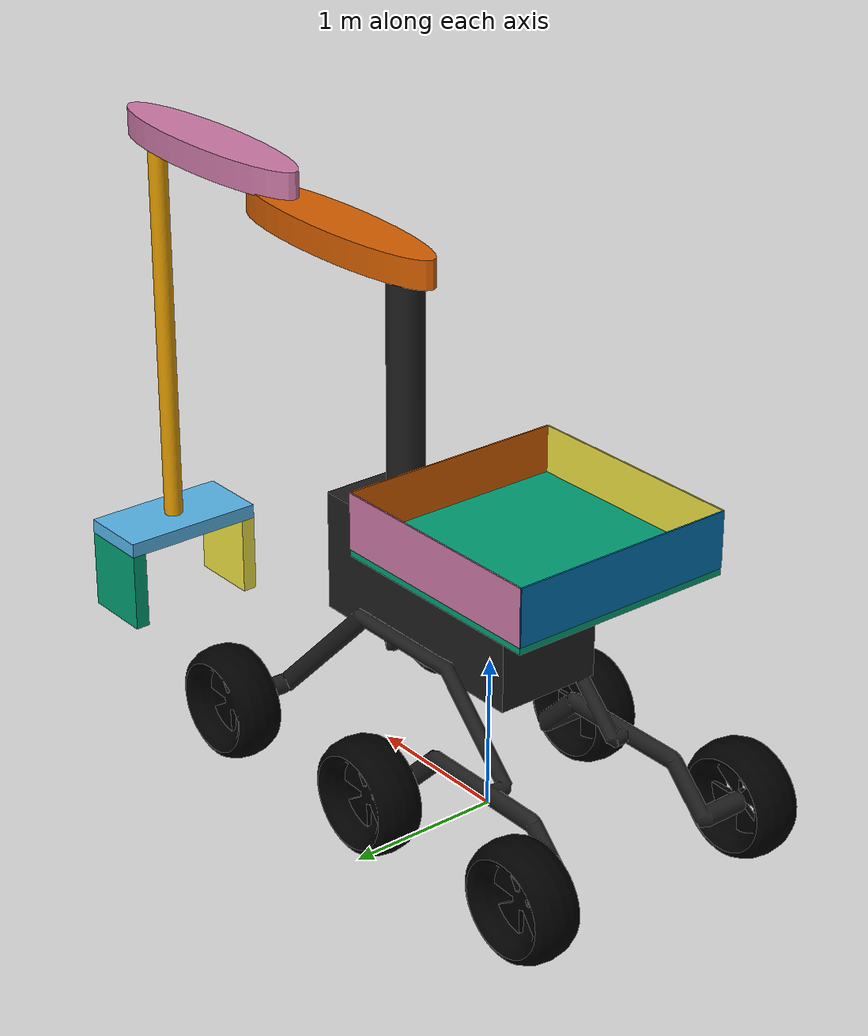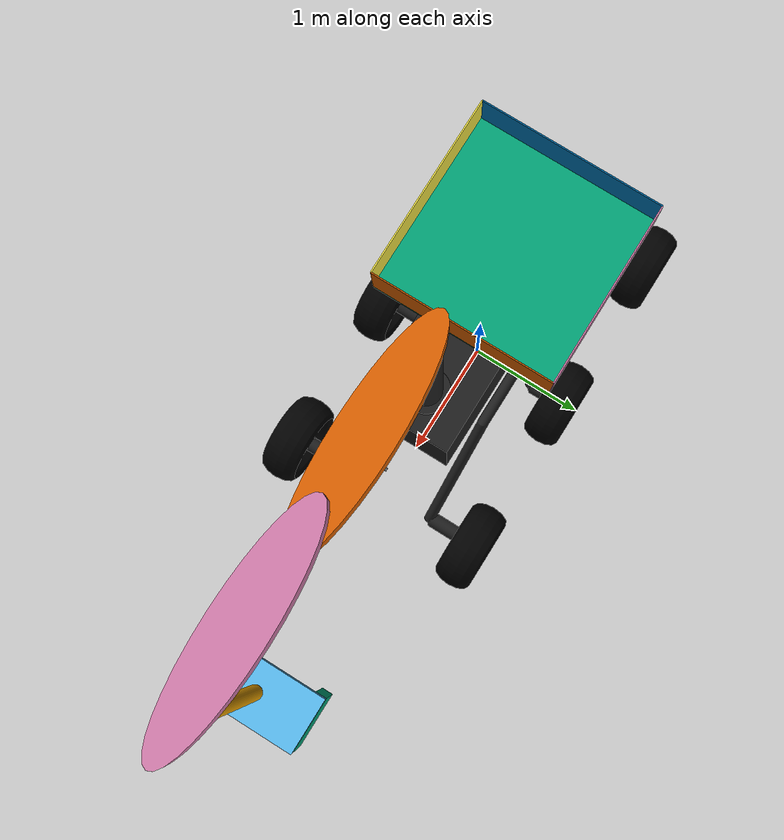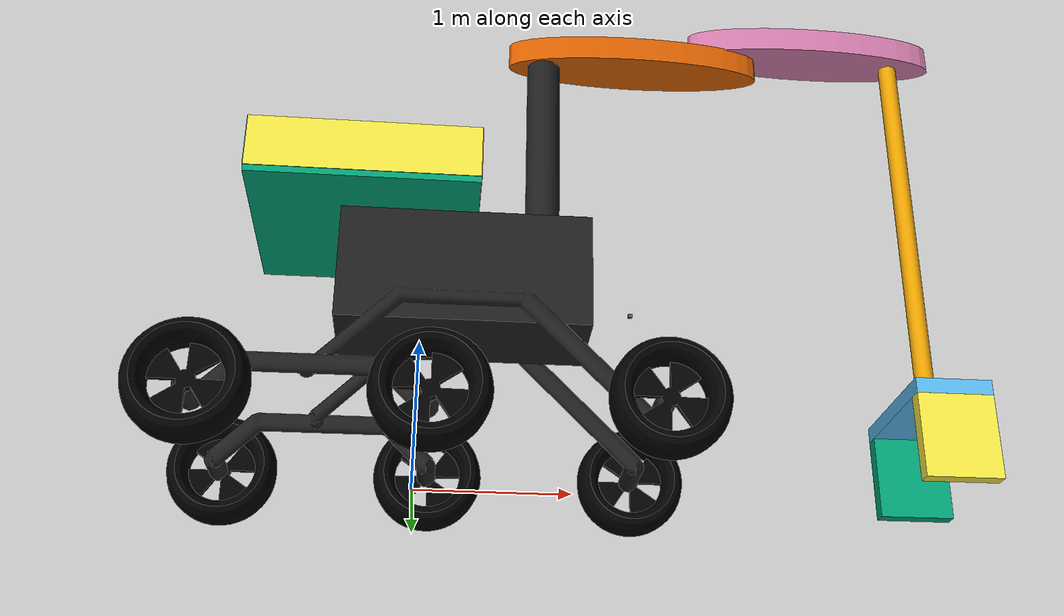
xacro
<?xml version="1.0"?>
<robot name="robot" xmlns:xacro="http://wiki.ros.org/xacro">
<!-- includes -->
<xacro:include filename="$(find msr_robot)/urdf/base/robot_base.urdf.xacro"/>
<xacro:include filename="$(find msr_robot)/urdf/wheels/rover_wheel.urdf.xacro"/>
<xacro:include filename="$(find msr_robot)/urdf/arm/scara.urdf.xacro"/>
<xacro:include filename="$(find msr_robot)/urdf/sensors/camera.urdf.xacro"/>
<xacro:include filename="$(find msr_robot)/urdf/sensors/imu_sensor.urdf.xacro"/>
<!-- Propiedades -->
<xacro:property name="PI" value="3.1415926535897931"/>
<xacro:property name="wheel_offset_x" value="0.85"/>
<xacro:property name="wheel_offset_z" value="-0.4"/>
<xacro:property name="wheel_offset_y_middle" value="0.09"/>
<xacro:property name="wheel_offset_y_back" value="1.3"/>
<xacro:property name="wheel_offset_y_front" value="1.5"/>

<xacro:property name="arm_offset_y" value="0.0"/>
<xacro:property name="arm_offset_x" value="0.8"/>
<xacro:property name="arm_offset_z" value="2.45"/>
<!-- argumentos -->
<xacro:arg name="robot_ns" default=""/>
<xacro:arg name="prefix" default=""/>
<!-- Robot Parts -->
<!-- Base -->
<xacro:robot_base prefix=""/>
<!-- Wheels -->
<xacro:rover_wheel prefix="front_left_" parent="base_link">
<origin xyz=" ${wheel_offset_y_front} ${wheel_offset_x} ${wheel_offset_z}" rpy="${PI/2} 0 ${-PI}"/>
</xacro:rover_wheel>
<xacro:rover_wheel prefix="front_right_" parent="base_link">
<origin xyz=" ${wheel_offset_y_front} -${wheel_offset_x} ${wheel_offset_z}" rpy="${PI/2} 0 0"/>
</xacro:rover_wheel>
<xacro:rover_wheel prefix="middle_left_" parent="base_link">
<origin xyz=" ${wheel_offset_y_middle} ${wheel_offset_x} ${wheel_offset_z}" rpy="${PI/2} 0 -${PI}"/>
</xacro:rover_wheel>
<xacro:rover_wheel prefix="middle_right_" parent="base_link">
<origin xyz=" ${wheel_offset_y_middle} -${wheel_offset_x} ${wheel_offset_z}" rpy="${PI/2} 0 0"/>
</xacro:rover_wheel>
<xacro:rover_wheel prefix="back_left_" parent="base_link">
<origin xyz="-${wheel_offset_y_back} ${wheel_offset_x} ${wheel_offset_z}" rpy="${PI/2} 0 -${PI}"/>
</xacro:rover_wheel>
<xacro:rover_wheel prefix="back_right_" parent="base_link">
<origin xyz="-${wheel_offset_y_back} -${wheel_offset_x} ${wheel_offset_z}" rpy="${PI/2} 0 0"/>
</xacro:rover_wheel>
<!-- Arm -->
<xacro:scara parent="base_link">
<origin xyz="${arm_offset_x} ${arm_offset_y} ${arm_offset_z}" rpy="0 0 ${PI/2}"/>
</xacro:scara>
<!-- sensores -->
<xacro:sensor_camera node_name="front_camera" node_namespace="$(arg robot_ns)" frame_prefix="$(arg prefix)front_camera" parent="$(arg prefix)base_link">
<origin xyz="1.4 0 0.5" rpy="0 0 0"/>
</xacro:sensor_camera>

<xacro:sensor_camera node_name="arm_camera" node_namespace="$(arg robot_ns)" frame_prefix="$(arg prefix)arm_camera" parent="$(arg prefix)gripper_base_link" >
    <origin xyz="0.0 0.0 -0.01" rpy="-1.57 1.57 0"/>
</xacro:sensor_camera>

<xacro:sensor_imu ns="$(arg robot_ns)" prefix="$(arg prefix)imu_" parent="$(arg prefix)base_link">
    <origin xyz="0.0 0.0 0.0" rpy="0 0 0"/>
</xacro:sensor_imu>

<!-- Gazebo ROS control plugins -->
<xacro:include filename="$(find msr_robot)/urdf/ros2_control.urdf.xacro"/>
<xacro:arg name="config_controllers" default="$(find msr_robot)/config/rover_controllers.yaml"/>
<xacro:arg name="update_rate" default="100"/>
<xacro:ros2_control/>
</robot>

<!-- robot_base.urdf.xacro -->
<robot xmlns:xacro="http://wiki.ros.org/xacro">

<xacro:macro name="robot_base" params="prefix">

  <joint name="${prefix}Cube_link_joint" type="fixed">
    <origin rpy="0.00000 0.00000 3.14159" xyz="-0.39823 0.01689 1.10641"/>
    <parent link="${prefix}base_link"/>
    <child link="${prefix}Cube_link"/>
  </joint>

  <joint name="${prefix}Cube.001_link_joint" type="fixed">
    <origin rpy="1.57080 0.00000 -0.00000" xyz="0.00000 0.75000 0.75000"/>
    <parent link="${prefix}Cube_link"/>
    <child link="${prefix}Cube.001_link"/>
  </joint>

  <joint name="${prefix}Cube.002_link_joint" type="fixed">
    <origin rpy="1.57080 0.00000 1.57080" xyz="0.75000 0.00000 0.75000"/>
    <parent link="${prefix}Cube_link"/>
    <child link="${prefix}Cube.002_link"/>
  </joint>

  <joint name="${prefix}Cube.003_link_joint" type="fixed">
    <origin rpy="1.57080 0.00000 1.57080" xyz="-0.75000 0.00000 0.75000"/>
    <parent link="${prefix}Cube_link"/>
    <child link="${prefix}Cube.003_link"/>
  </joint>

  <joint name="${prefix}Cube.004_link_joint" type="fixed">
    <origin rpy="1.57080 0.00000 -0.00000" xyz="0.00000 -0.75000 0.75000"/>
    <parent link="${prefix}Cube_link"/>
    <child link="${prefix}Cube.004_link"/>
  </joint>
  <!-- Base footprint (referencia en el suelo) -->
  <link name="${prefix}base_footprint"/>

  <joint name="${prefix}base_footprint_to_base_link" type="fixed">
    <origin rpy="0 0 0" xyz="0 0 0.75"/>
    <parent link="${prefix}base_footprint"/>
    <child link="${prefix}base_link"/>
  </joint>
  <link name="${prefix}base_link">
    <collision name="base.002_collision">
      <origin rpy="0.00000 0.00000 0.00000" xyz="0.79381 0.00080 1.74991"/>
      <geometry>
        <cylinder radius="0.11924" length="1.36590"/>
      </geometry>
    </collision>
    <collision name="base_collision">
      <origin rpy="0.00000 0.00000 1.57" xyz="0.27566 0.00094  0.67515"/>
      <geometry>
        <box size="0.66927 1.65373 0.76887"/>
      </geometry>
    </collision>

    <inertial>
      <inertia ixx="35.87325" ixy="0.01179" ixz="0.35204" iyy="28.19819" iyz="-4.58962" izz="14.42189"/>
      <origin rpy="0.00000 0.00000 0.00000" xyz="0.01505 -0.17615 0.70136"/>
      <mass value="40.00000"/>
    </inertial>

    <visual name="arm_base">
      <material name="Material.001"/>
      <origin rpy="0.00000 0.00000 1.57" xyz="-0.00000 -0.00000 0.00000"/>
      <geometry>
          <mesh filename="package://msr_robot/meshes/dae/Cylinder.013.dae" scale="-0.11826 -0.11826 -0.02102"/>
      </geometry>
    </visual>

    <visual name="base">
      <material name="Material.001"/>
      <origin rpy="0.00000 0.00000 1.57" xyz="-0.00000 -0.00000 0.00000"/>
      <geometry>
          <mesh filename="package://msr_robot/meshes/dae/Cylinder.002.dae" scale="-0.11826 -0.11826 -0.02102"/>
      </geometry>
    </visual>

  </link>

  <link name="${prefix}Cube_link">
    <collision name="Cube_collision">
      <origin rpy="0.00000 0.00000 -0.00000" xyz="0.00000 0.00000 -0.00000"/>
      <geometry>
        <box size="1.50000 1.50000 0.10000"/>
      </geometry>
    </collision>

    <visual name="wall">
      <material name="None"/>
      <origin rpy="0.00000 0.00000 -0.00000" xyz="0.00000 0.00000 -0.00000"/>
      <geometry>
        <box size="1.50000 1.50000 0.10000"/>
      </geometry>
    </visual>
  </link>

  <link name="${prefix}Cube.001_link">
    <collision name="Cube.001_collision">
      <origin rpy="0.00000 0.00000 0.00000" xyz="0.00000 -0.55517 -0.00000"/>
      <geometry>
        <box size="1.50000 0.36183 0.10000"/>
      </geometry>
    </collision>

    <visual name="wall1">
      <material name="None"/>
      <origin rpy="0.00000 0.00000 0.00000" xyz="0.00000 -0.57508 -0.00000"/>
      <geometry>
        <box size="1.50000 0.36183 0.01000"/>
      </geometry>
    </visual>
  </link>

  <link name="${prefix}Cube.002_link">
    <collision name="Cube.002_collision">
      <origin rpy="0.00000 0.00000 0.00000" xyz="0.00000 -0.56306 0.00000"/>
      <geometry>
        <box size="1.50000 0.36183 0.10000"/>
      </geometry>
    </collision>

    <visual name="wall2">
      <material name="None"/>
      <origin rpy="0.00000 0.00000 0.00000" xyz="-0.00000 -0.57508 -0.00000"/>
      <geometry>
        <box size="1.50000 0.36183 0.01000"/>
      </geometry>
    </visual>
  </link>

  <link name="${prefix}Cube.003_link">
    <collision name="Cube.003_collision">
      <origin rpy="0.00000 0.00000 0.00000" xyz="0.00000 -0.56370 0.00000"/>
      <geometry>
        <box size="1.50000 0.36183 0.10000"/>
      </geometry>
    </collision>

    <visual name="wall3">
      <material name="None"/>
      <origin rpy="0.00000 0.00000 0.00000" xyz="-0.00000 -0.57508 0.00000"/>
      <geometry>
        <box size="1.50000 0.36183 0.01000"/>
      </geometry>
    </visual>
  </link>

  <link name="${prefix}Cube.004_link">
    <collision name="Cube.004_collision">
      <origin rpy="0.00000 0.00000 0.00000" xyz="0.00000 -0.55939 0.00000"/>
      <geometry>
        <box size="1.50000 0.36183 0.10000"/>
      </geometry>
    </collision>

    <visual name="wall4">
      <material name="None"/>
      <origin rpy="0.00000 0.00000 0.00000" xyz="0.00000 -0.57508 -0.00000"/>
      <geometry>
        <box size="1.50000 0.36183 0.01000"/>
      </geometry>
    </visual>
  </link>

</xacro:macro>

</robot>

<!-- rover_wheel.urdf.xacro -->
<!-- created with Phobos 1.0.1 "Capricious Choutengan" -->
<robot name="robot" xmlns:xacro="http://wiki.ros.org/xacro">
  <xacro:macro name="rover_wheel" params="prefix parent *origin">
    <joint name="${prefix}wheel_joint" type="continuous">
      <parent link="${parent}"/>
      <child link="${prefix}wheel_link"/>
      <xacro:insert_block name="origin"/>
      <axis xyz="0 0 1"/>
    </joint>

    <link name="${prefix}wheel_link">
      <collision name="${prefix}wheel_collision">
        <origin rpy="0 0 0" xyz="0 0 0"/>
        <geometry>
          <mesh filename="package://msr_robot/meshes/dae/Torus.001.dae" scale="0.29444 0.29444 0.62774"/>
        </geometry>
        <surface>
            <friction>
                <ode>
                    <mu>1.000000</mu>
                    <mu2>1.000000</mu2>
                    <fdir1>0.000000 0.000000 1.000000</fdir1>
                    <slip1>0.0050000</slip1>
                    <slip2>0.0050000</slip2>
                </ode>
            </friction>
        </surface>
      </collision>

      <inertial>
        <inertia ixx="0.18734" ixy="0" ixz="0" iyy="0.10770" iyz="0" izz="0.10770"/>
        <origin rpy="0 0 0" xyz="0 0 0"/>
        <mass value="3.0"/>
      </inertial>

      <visual name="${prefix}wheel_visual">
        <material name="Material"/>
        <origin rpy="0 0 0" xyz="0 0 0"/>
        <geometry>
          <mesh filename="package://msr_robot/meshes/dae/Torus.001.dae" scale="0.29444 0.29444 0.62774"/>
        </geometry>
      </visual>
    </link>

    <transmission name="${prefix}_wheel_joint_trans">
      <type>transmission_interface/SimpleTransmission</type>
      <joint name="${prefix}wheel_joint">
          <hardwareInterface>hardware_interface/VelocityJointInterface</hardwareInterface>
      </joint>
      <actuator name="${prefix}wheel_joint_motor">
          <mechanicalReduction>1</mechanicalReduction>
      </actuator>
    </transmission>

    <gazebo reference="${prefix}wheel_link">
        <mu1>5</mu1>
        <mu2>5</mu2>
    </gazebo>
  </xacro:macro>
</robot>

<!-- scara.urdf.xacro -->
<robot name="robot" xmlns:xacro="http://wiki.ros.org/xacro">

  <xacro:property name="PI" value="3.141592653589793"/>

  <xacro:macro name="scara" params="parent *origin">

    <!--        JOINTS         -->

    <joint name="arm1_joint" type="revolute">
      <xacro:insert_block name="origin"/>
      <parent link="${parent}"/>
      <child link="arm1_link"/>
      <axis xyz="0 0 1"/>
      <limit lower="-6.2832" upper="6.2832" effort="50" velocity="2.0"/>
    </joint>

    <joint name="arm2_joint" type="revolute">
      <origin xyz="0 -1.37934 0.17516" rpy="0 0 0"/>
      <parent link="arm1_link"/>
      <child link="arm2_link"/>
      <axis xyz="0 0 1"/>
      <limit lower="-2.62" upper="2.62" effort="50" velocity="2.0"/>
    </joint>

    <!-- AFTER -->
  <joint name="gripper_rod_joint" type="revolute">
    <origin xyz="0 -1.20684 0.09373" rpy="0 0 0"/>
    <parent link="arm2_link"/>
    <child link="gripper_rod_link"/>
    <axis xyz="0 0 1"/>
    <limit lower="-6.2832" upper="6.2832" effort="50" velocity="2.0"/>
  </joint>

    <joint name="cylinder_joint" type="prismatic">
      <origin xyz="0.01179 -0.01166 -1.39007" rpy="0 0 ${PI}"/>
      <parent link="gripper_rod_link"/>
      <child link="cylinder_link"/>
      <axis xyz="0 0 1"/>
      <limit lower="0.0" upper="2.4" effort="100" velocity="0.5"/>
    </joint>

    <joint name="gripper_base_joint" type="fixed">
      <origin xyz="0 0 -1.43956" rpy="0 0 0"/>
      <parent link="cylinder_link"/>
      <child link="gripper_base_link"/>
    </joint>

    <!--     GRIPPER JOINTS    -->

    <joint name="left_finger_joint" type="prismatic">
      <origin rpy="-0.00000 0 0.00000" xyz="-0.45000 0.00000 -0.45000"/>
      <parent link="gripper_base_link"/>
      <child link="left_finger_link"/>
      <axis xyz="1 0 0"/>
      <limit lower="0.0" upper="0.3" effort="400" velocity="0.2"/>
    </joint>

    <joint name="right_finger_joint" type="prismatic">
      <origin rpy="0.00000 0 0.00000" xyz="0.45000 0.00000 -0.45000"/>
      <parent link="gripper_base_link"/>
      <child link="right_finger_link"/>
      <axis xyz="-1 0 0"/>
      <limit lower="0.0" upper="0.3" effort="400" velocity="0.2"/>
    </joint>

    <!--         LINKS         -->

    <link name="arm1_link">
      <collision name="arm1_collision">
        <origin rpy="0.00000 0.00000 -0.00000" xyz="-0.00000 -0.66089 0.00000"/>
        <geometry>
          <mesh filename="package://msr_robot/meshes/dae/Cylinder.003.dae" scale="-0.19690 -0.91222 -0.00278"/>
        </geometry>
      </collision>
      <inertial>
        <inertia ixx="0.62861" ixy="0.00000" ixz="0.00000" iyy="0.03739" iyz="0.00000" izz="0.64900"/>
        <origin rpy="0.00000 0.00000 0.00000" xyz="-0.00000 -0.66089 0.08942"/>
        <mass value="3.00000"/>
      </inertial>
      <visual name="arm1">
        <material name="None"/>
        <origin rpy="0.00000 0.00000 -0.00000" xyz="-0.00000 -0.66089 0.00000"/>
        <geometry>
          <mesh filename="package://msr_robot/meshes/dae/Cylinder.003.dae" scale="-0.19690 -0.91222 -0.00278"/>
        </geometry>
      </visual>
    </link>

    <link name="arm2_link">
      <collision name="arm2_collision">
        <origin rpy="0.00000 0.00000 -0.00000" xyz="-0.00000 -0.61400 0.00000"/>
        <geometry>
          <mesh filename="package://msr_robot/meshes/dae/Cylinder.006.dae" scale="-0.19690 -0.91222 -0.00278"/>
        </geometry>
      </collision>
      <inertial>
        <inertia ixx="0.62861" ixy="0.00000" ixz="0.00000" iyy="0.03739" iyz="0.00000" izz="0.64900"/>
        <origin rpy="0.00000 0.00000 0.00000" xyz="-0.00000 -0.61400 0.08942"/>
        <mass value="3.00000"/>
      </inertial>
      <visual name="arm2">
        <material name="None"/>
        <origin rpy="0.00000 0.00000 -0.00000" xyz="-0.00000 -0.61400 0.00000"/>
        <geometry>
          <mesh filename="package://msr_robot/meshes/dae/Cylinder.006.dae" scale="-0.19690 -0.91222 -0.00278"/>
        </geometry>
      </visual>
    </link>

    <link name="gripper_rod_link">
    <inertial>
      <mass value="0.1"/>
      <origin rpy="0 0 0" xyz="0 0 0"/>
      <inertia ixx="0.001" ixy="0" ixz="0"
              iyy="0.001" iyz="0" izz="0.001"/>
    </inertial>
  </link>

    <link name="cylinder_link">
      <visual>
        <geometry>
          <mesh filename="package://msr_robot/meshes/dae/Cylinder.016.dae" scale="0.06435 0.06435 1.45375"/>
        </geometry>
      </visual>
    </link>

    <link name="gripper_base_link">
      <collision name="Gripper_base_collision.000">
        <origin rpy="0.00000 0.00000 0.00000" xyz="0.00000 0.00000 0.00000"/>
        <geometry>
          <mesh filename="package://msr_robot/meshes/dae/Cube.dae" scale="0.50000 0.25000 0.05000"/>
        </geometry>
      </collision>
      <inertial>
        <inertia ixx="0.02167" ixy="0.00000" ixz="0.00000" iyy="0.08417" iyz="0.00000" izz="0.10417"/>
        <origin rpy="0.00000 0.00000 0.00000" xyz="0.00000 0.00000 0.00000"/>
        <mass value="1.00000"/>
      </inertial>
      <visual name="Gripper_base">
        <material name="None"/>
        <origin rpy="0.00000 0.00000 0.00000" xyz="0.00000 0.00000 0.00000"/>
        <geometry>
          <mesh filename="package://msr_robot/meshes/dae/Cube.dae" scale="0.50000 0.25000 0.05000"/>
        </geometry>
      </visual>
    </link>

    <link name="left_finger_link">
    <collision name="left finger_collision">
      <origin rpy="-3.14159 1.57 -3.14159" xyz="0 -0.00000 0.10"/>
      <geometry>
        <box size="0.55000 0.50000 0.10000"/>
      </geometry>
    </collision>
    <inertial>
      <inertia ixx="0.04604" ixy="0.00000" ixz="0.00000" iyy="0.02604" iyz="0.00000" izz="0.02167"/>
      <origin rpy="0.00000 1.57 0.00000" xyz="0.12500 -0.00000 0.00000"/>
      <mass value="1.00000"/>
    </inertial>
    <visual name="left finger">
      <material name="None"/>
      <origin rpy="-3.14159 1.57 -3.14159" xyz="-0.00000 -0.00000 -0.00000"/>
      <geometry>
        <mesh filename="package://msr_robot/meshes/dae/Cube.012.dae" scale="0.40000 0.25000 0.05000"/>
      </geometry>
    </visual>
  </link>
  <link name="right_finger_link">
    <collision name="right_finger_collision">
      <origin rpy="0.00000 1.57 0.00000" xyz="0 -0.00000 0.1"/>
      <geometry>
        <box size="0.55000 0.50000 0.10000"/>
      </geometry>
    </collision>
    <inertial>
      <inertia ixx="0.04604" ixy="0.00000" ixz="0.00000" iyy="0.02604" iyz="0.00000" izz="0.02167"/>
      <origin rpy="0.00000 1.57 0.00000" xyz="-0.12500 -0.00000 -0.00000"/>
      <mass value="1.00000"/>
    </inertial>
    <visual name="right_finger">
      <material name="None"/>
      <origin rpy="0.00000 1.57 -0.00000" xyz="0.00000 -0.00000 -0.00000"/>
      <geometry>
        <mesh filename="package://msr_robot/meshes/dae/Cube.011.dae" scale="0.40000 0.25000 0.05000"/>
      </geometry>
    </visual>
  </link>
  <gazebo reference="left_finger_link">
    <mu1>10.0</mu1>
    <mu2>10.0</mu2>
    <kp>1e6</kp>   <!-- contact stiffness -->
    <kd>100.0</kd> <!-- contact damping -->
    <minDepth>0.001</minDepth>
    <maxContacts>10</maxContacts>
  </gazebo>

  <gazebo reference="right_finger_link">
    <mu1>10.0</mu1>
    <mu2>10.0</mu2>
    <kp>1e6</kp>
    <kd>100.0</kd>
    <minDepth>0.001</minDepth>
    <maxContacts>10</maxContacts>
  </gazebo>
  </xacro:macro>

</robot>

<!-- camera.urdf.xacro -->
<robot name="camera" xmlns:xacro="http://wiki.ros.org/xacro">
  <xacro:property name="PI" value="3.141592653589793"/>
  <xacro:macro name="sensor_camera"
                  params="frame_prefix
                        parent
                        *origin
                        node_name:=camera
                        node_namespace:=${None}
                        topic_prefix:=~/
                        horizontal_fov:=80
                        vertical_fov:=60
                        video_width:=1280
                        video_height:=720
                        video_fps:=30">
    <xacro:if value="${node_namespace == None}">
    <xacro:property name="node_namespace" value="${node_name}"/>
    </xacro:if>

    <link name="${frame_prefix}_camera_base_link">
      <visual>
        <origin xyz="0 0 0" rpy="0 0 0"/>
        <geometry>
          <box size="0.025 0.025 0.025"/>
        </geometry>
        <material name="light_grey">
          <color rgba="0.35 0.35 0.35 1.0"/>
        </material>
      </visual>

      <collision>
        <origin xyz="0 0 0" rpy="0 0 0"/>
        <geometry>
          <box size="0.025 0.025 0.025"/>
        </geometry>
      </collision>

      <inertial>
        <mass value="0.135"/>
        <origin xyz="0 0 0"/>
        <inertia
          ixx="${(0.135*(0.175*0.175+0.03*0.03))/12}" ixy="0" ixz="0"
          iyy="${(0.135*(0.033*0.033+0.03*0.03))/12}" iyz="0"
          izz="${(0.135*(0.033*0.033+0.175*0.175))/12}"/>
      </inertial>
    </link>
    <joint name="${frame_prefix}_camera_base_joint" type="fixed">
      <parent link="${parent}"/>
      <child link="${frame_prefix}_camera_base_link"/>
      <xacro:insert_block name="origin"/>
    </joint>

    <!-- CAMERA FRAME          -->

    <link name="${frame_prefix}_camera_frame"/>

    <joint name="${node_name}_camera_joint" type="fixed">
      <parent link="${frame_prefix}_camera_base_link"/>
      <child link="${frame_prefix}_camera_frame"/>
      <origin xyz="0 -0.06 0" rpy="0 0 0"/>
    </joint>

    <!-- OPTICAL FRAME (ROS)   -->
    <joint name="${node_name}_camera_optical_joint" type="fixed">
      <parent link="${frame_prefix}_camera_frame"/>
      <child link="${frame_prefix}_camera_optical_frame"/>
      <origin xyz="0 0 0" rpy="${-PI/2} 0 ${-PI/2}"/>
    </joint>
    <link name="${frame_prefix}_camera_optical_frame"/>
    <gazebo reference="${frame_prefix}_camera_frame">
      <sensor name="${frame_prefix}_sensor" type="camera">
        <visualize>true</visualize>
        <update_rate>30</update_rate>
        <topic>/${frame_prefix}/image</topic>
        <camera>
          <horizontal_fov>${radians(float(horizontal_fov))}</horizontal_fov>
          <image>
            <width>${video_width}</width>
            <height>${video_height}</height>
            <format>R8G8B8</format>
          </image>
          <clip>
            <near>0.10</near>
            <far>15.0</far>
          </clip>
          <noise>
            <type>gaussian</type>
            <mean>0.0</mean>
            <stddev>0.007</stddev>
          </noise>
          <optical_frame_id>${frame_prefix}_camera_frame</optical_frame_id>
        </camera>
      </sensor>
    </gazebo>

  </xacro:macro>
</robot>

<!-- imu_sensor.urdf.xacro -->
<robot name="imu_sensor" xmlns:xacro="http://wiki.ros.org/xacro">
  <xacro:macro name="sensor_imu" params="prefix ns:='' topic:='imu/data' parent *origin">
      <joint name="${prefix}_joint" type="fixed">
          <axis xyz="1 0 0"/>
          <xacro:insert_block name="origin"/>
          <parent link="${parent}"/>
          <child link="${prefix}_link"/>
      </joint>

      <link name="${prefix}_link">
          <inertial>
              <origin xyz="0.0 0 0.01" rpy="0 0 0" />
              <mass value="0.005" />
              <inertia
                  ixx="${(0.135*(0.175*0.175+0.03*0.03))/12}" ixy="0" ixz="0"
                  iyy="${(0.135*(0.033*0.033+0.03*0.03))/12}" iyz="0"
                  izz="${(0.135*(0.033*0.033+0.175*0.175))/12}"/>
          </inertial>
          <visual>
              <origin rpy="0 0 0" xyz="0 0 0"/>
              <geometry>
                  <box size="0.001 0.001 0.001"/>
              </geometry>
          </visual>
          <collision>
              <origin rpy="0 0 0" xyz="0 0 0"/>
              <geometry>
                  <box size="0.001 0.001 0.001"/>
              </geometry>
          </collision>
      </link>

      <gazebo reference="${prefix}_link">
          <sensor name="${prefix}_sensor" type="imu">
              <always_on>1</always_on>
              <update_rate>30</update_rate>
              <topic>${topic}</topic>
          </sensor>
      </gazebo>

  </xacro:macro>
</robot>
